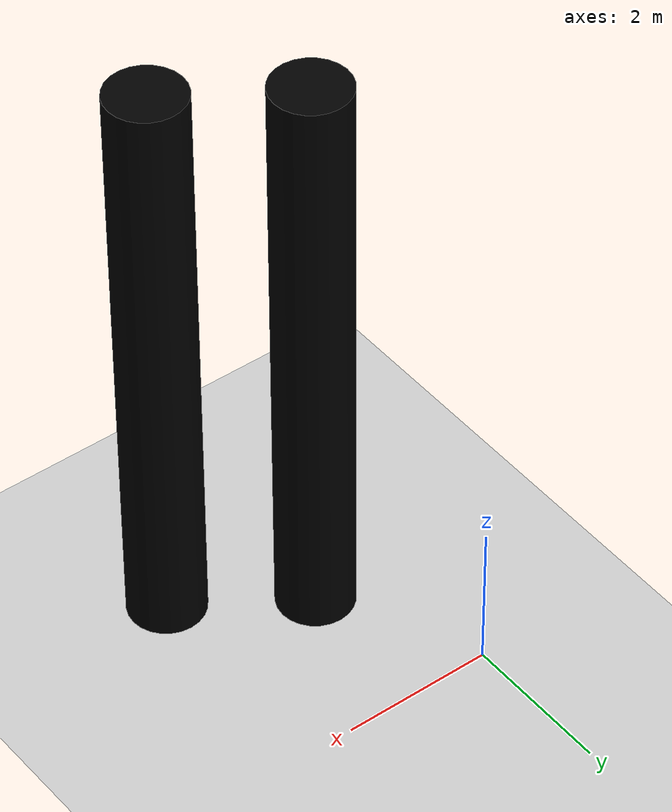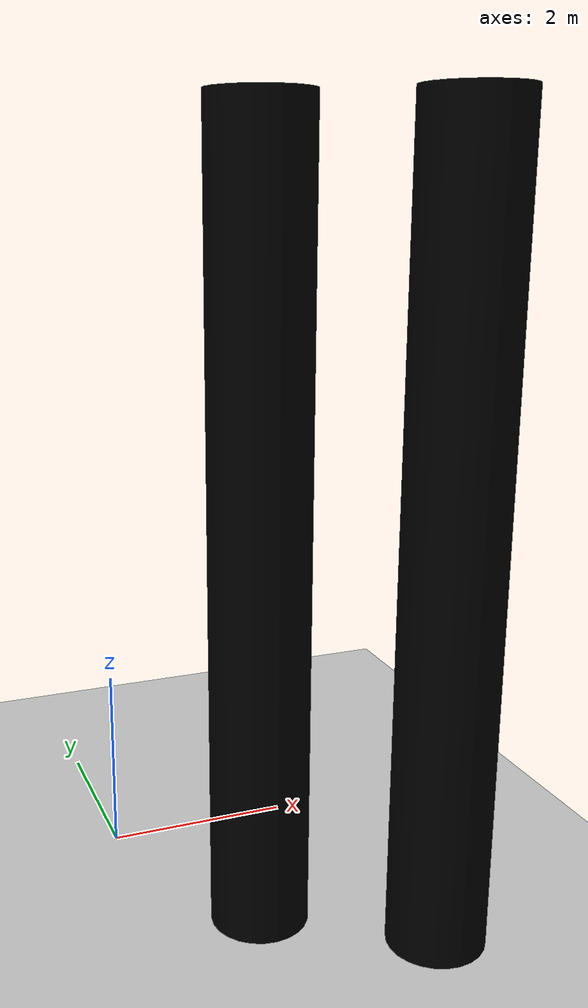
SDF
<?xml version="1.0" ?>
<sdf version="1.6">
  <world name="cbf_test_world">

    <include>
      <uri>model://sun</uri>
    </include>

    <include>
      <uri>model://ground_plane</uri>
    </include>

    <model name="obstacle_1">
      <static>true</static>
      <pose>1 -2 4 0 0 0</pose>
      <link name="link">
        <collision name="collision">
          <geometry>
            <cylinder>
              <radius>0.5</radius>
              <length>8.0</length>
            </cylinder>
          </geometry>
        </collision>
        <visual name="visual">
          <geometry>
            <cylinder>
              <radius>0.5</radius>
              <length>8.0</length>
            </cylinder>
          </geometry>
          <material>
            <ambient>0 0 0 1</ambient>
            <diffuse>0 0 0 1</diffuse>
          </material>
        </visual>
      </link>
    </model>

    <model name="obstacle_2">
      <static>true</static>
      <pose>2.5 -3 4 0 0 0</pose>
      <link name="link">
        <collision name="collision">
          <geometry>
            <cylinder>
              <radius>0.5</radius>
              <length>8.0</length>
            </cylinder>
          </geometry>
        </collision>
        <visual name="visual">
          <geometry>
            <cylinder>
              <radius>0.5</radius>
              <length>8.0</length>
            </cylinder>
          </geometry>
          <material>
            <ambient>0 0 0 1</ambient>
            <diffuse>0 0 0 1</diffuse>
          </material>
        </visual>
      </link>
    </model>

  </world>
</sdf>
